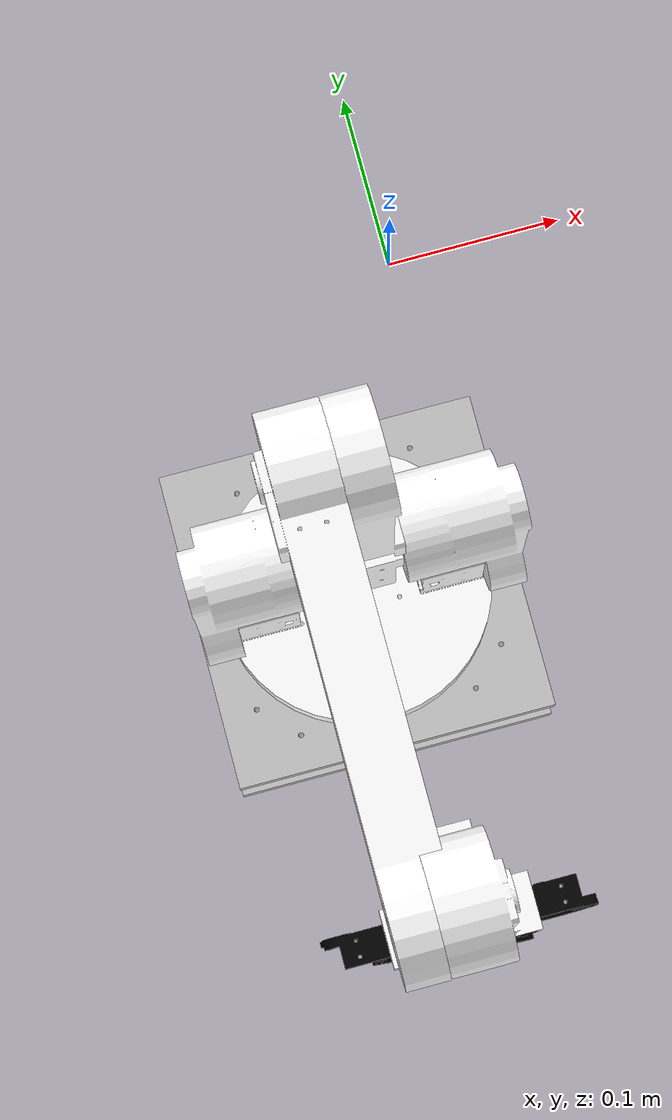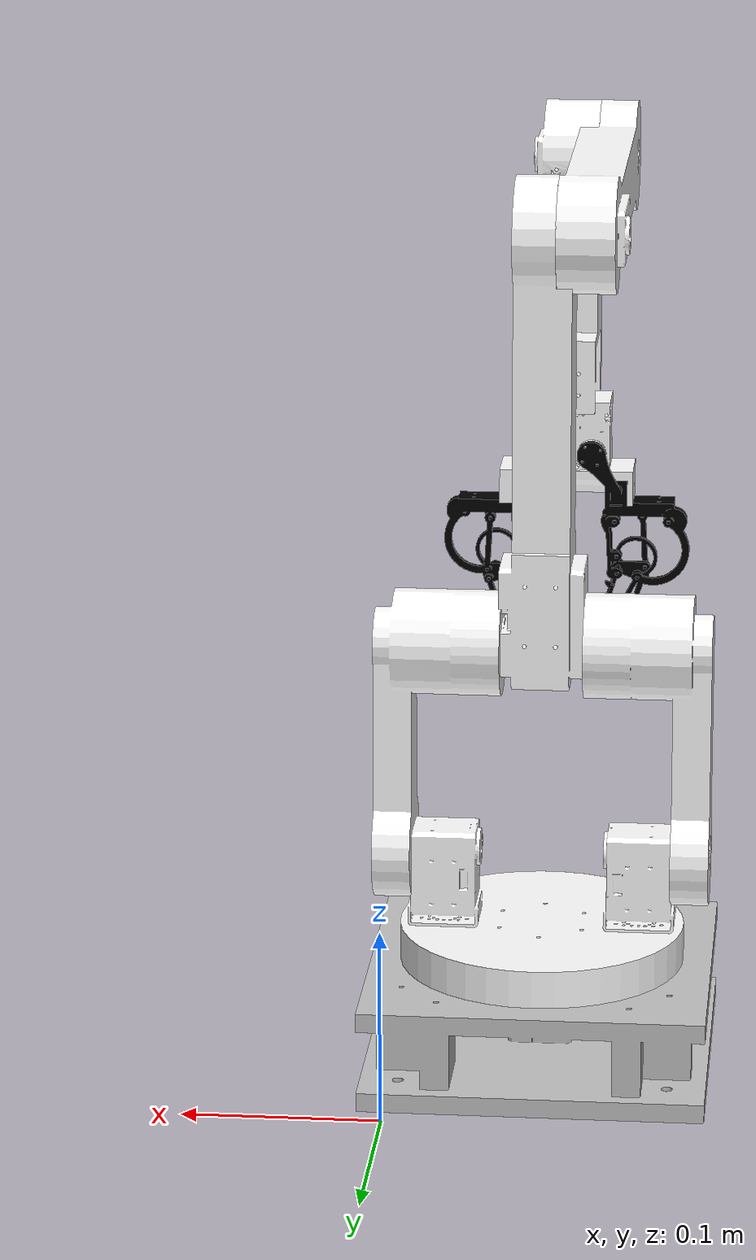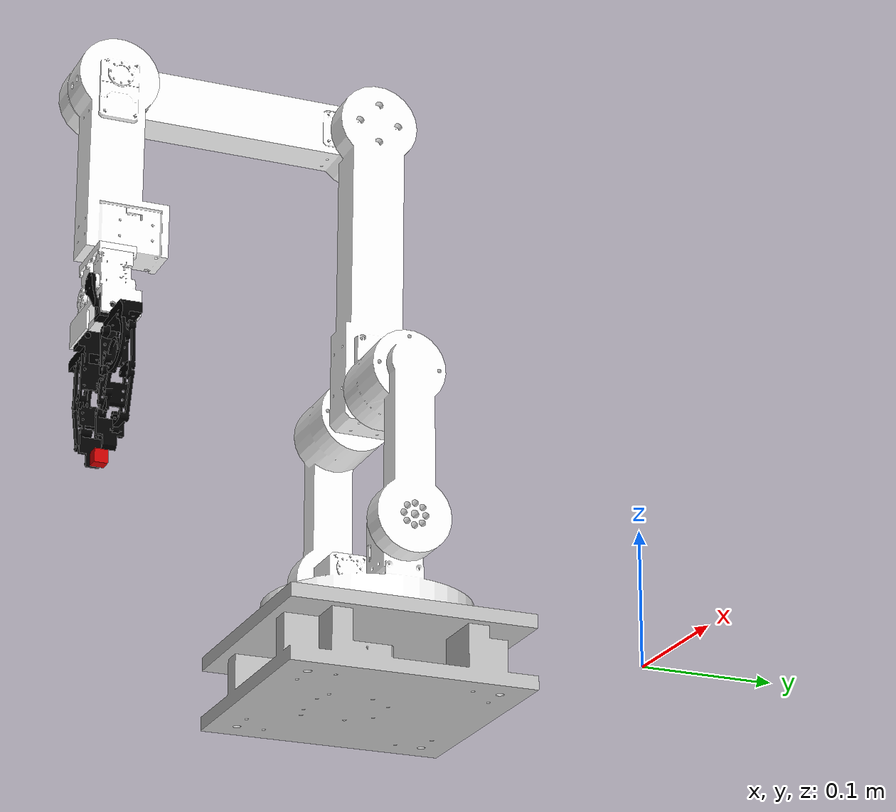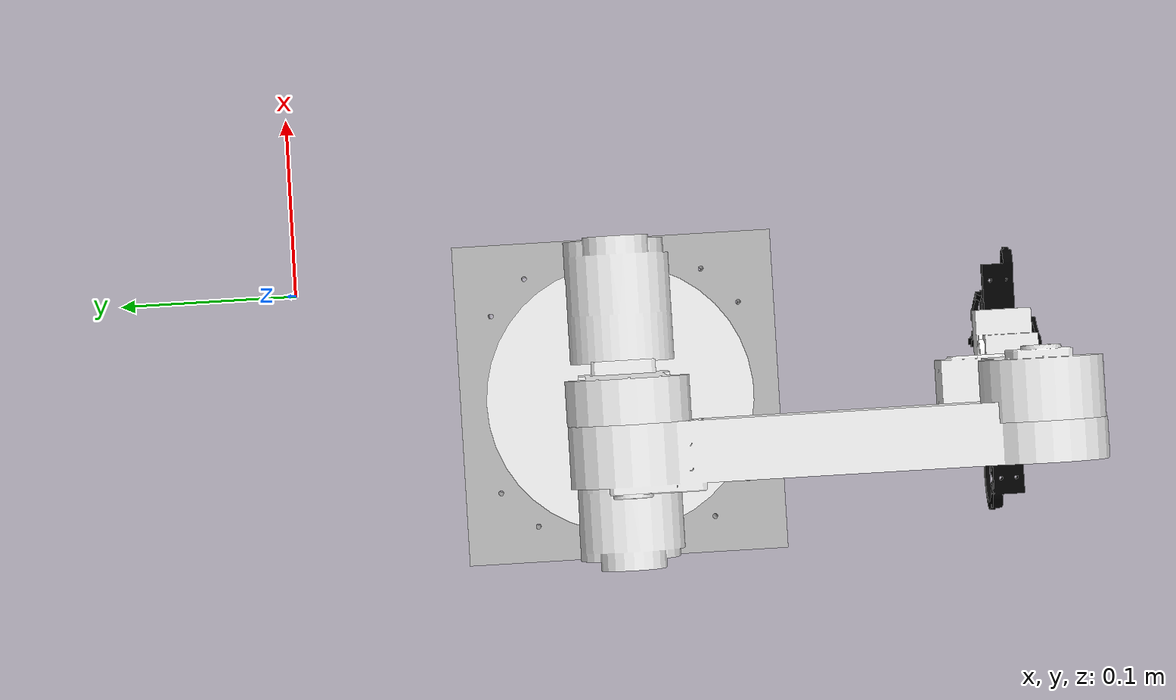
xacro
<?xml version="1.0"?>
<robot xmlns:xacro="http://www.ros.org/wiki/xacro" name="Go_manipulator">
    <xacro:arg name="initial_positions_file" default="initial_positions.yaml" />

    <!-- Import Go_manipulator urdf file -->
    <xacro:include filename="$(find Go_manipulator_description)/urdf/Go_manipulator.urdf" />

    <!-- Import control_xacro -->
    <xacro:include filename="Go_manipulator.ros2_control.xacro" />

    <xacro:Go_manipulator_ros2_control name="FakeSystem" initial_positions_file="$(arg initial_positions_file)"/>

</robot>

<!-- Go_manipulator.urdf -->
<robot name="Go_manipulator">

  <material name="black">
    <color rgba="0.0 0.0 0.0 1.0"/>
  </material>
  <material name="blue">
    <color rgba="0.0 0.0 0.8 1.0"/>
  </material>
  <material name="brown">
    <color rgba="0.8706 0.8118 0.7647 1.0"/>
  </material>
  <material name="dark">
    <color rgba="0.3 0.3 0.3 1.0"/>
  </material>
  <material name="green">
    <color rgba="0.0 0.8 0.0 1.0"/>
  </material>
  <material name="grey">
    <color rgba="0.5 0.5 0.5 1.0"/>
  </material>
  <material name="light_black">
    <color rgba="0.4 0.4 0.4 1.0"/>
  </material>
  <material name="orange">
    <color rgba="1.0 0.4235 0.0392 1.0"/>
  </material>
  <material name="red">
    <color rgba="0.8 0.0 0.0 1.0"/>
  </material>
  <material name="white">
    <color rgba="1.0 1.0 1.0 1.0"/>
  </material>

  <!-- Base Link -->
  <link name="base_link">
    <inertial>
      <origin xyz="-0.0676 -0.0067 0.1811" rpy="0 0 0" />
      <mass value="0.8410" />
      <inertia ixx="0.0026" ixy="2.8e-13" ixz="-4.3e-13" iyy="0.0044" iyz="-5.1e-7" izz="0.0025" />
    </inertial>
    <visual>
      <origin xyz="0 0 0" rpy="0 0 0" />
      <geometry>
        <mesh filename="package://Go_manipulator_description/meshes/base_link.STL" />
      </geometry>
      <material name="">
        <color rgba="0.75 0.75 0.75 1" />
      </material>
    </visual>
    <collision>
      <origin xyz="0 0 0" rpy="0 0 0" />
      <geometry>
        <mesh filename="package://Go_manipulator_description/meshes/base_link.STL" />
      </geometry>
    </collision>
  </link>

  <!-- Link 1 -->
  <link name="link1">
    <inertial>
      <origin xyz="0 0.0180 0.00005" rpy="0 0 0" />
      <mass value="0.4427" />
      <inertia ixx="0.0006" ixy="8.3e-21" ixz="-1.2e-13" iyy="0.0013" iyz="-6.98e-7" izz="0.0009" />
    </inertial>
    <visual>
      <origin xyz="0 0 0" rpy="0 0 0" />
      <geometry>
        <mesh filename="package://Go_manipulator_description/meshes/link1.STL" />
      </geometry>
      <material name="white"/>
    </visual>
    <collision>
      <origin xyz="0 0 0" rpy="0 0 0" />
      <geometry>
        <mesh filename="package://Go_manipulator_description/meshes/link1.STL" />
      </geometry>
    </collision>
  </link>

  <!-- Joint 1 -->
  <joint name="joint1" type="revolute">
    <origin xyz="-0.0676 -0.18 0.0207" rpy="1.5708 0 0" />
    <parent link="base_link" />
    <child link="link1" />
    <axis xyz="0 1 0" />
    <limit lower="-3.14159" upper="3.14159" effort="1" velocity="1.0" />
  </joint>

  <!-- Link 2 -->
  <link name="link2">
    <inertial>
      <origin xyz="0 0.0253 0.0751" rpy="0 0 0" />
      <mass value="0.4222" />
      <inertia ixx="0.0010" ixy="-4.91e-15" ixz="1.65e-15" iyy="0.0027" iyz="-0.00027" izz="0.0020" />
    </inertial>
    <visual>
      <origin xyz="0 0 0" rpy="0 0 0" />
      <geometry>
        <mesh filename="package://Go_manipulator_description/meshes/link2.STL" />
      </geometry>
      <material name="white"/>
    </visual>
    <collision>
      <origin xyz="0 0 0" rpy="0 0 0" />
      <geometry>
        <mesh filename="package://Go_manipulator_description/meshes/link2.STL" />
      </geometry>
    </collision>
  </link>

  <!-- Joint 2 -->
  <joint name="joint2" type="revolute">
    <origin xyz="0 0.0605 0.00025" rpy="-1.2461 0 0" />
    <parent link="link1" />
    <child link="link2" />
    <axis xyz="1 0 0" />
    <limit lower="-3.14159" upper="3.14159" effort="1" velocity="1.0" />

  </joint>

  <!-- Link 3 -->
  <link name="link3">
    <inertial>
      <origin xyz="0.0010 0.0340 0.0946" rpy="0 0 0" />
      <mass value="0.3496" />
      <inertia ixx="0.0022" ixy="-1.15e-5" ixz="-3.21e-5" iyy="0.0019" iyz="-0.00065" izz="0.00032" />
    </inertial>
    <visual>
      <origin xyz="0 0 0" rpy="0 0 0" />
      <geometry>
        <mesh filename="package://Go_manipulator_description/meshes/link3.STL" />
      </geometry>
      <material name="white"/>
    </visual>
    <collision>
      <origin xyz="0 0 0" rpy="0 0 0" />
      <geometry>
        <mesh filename="package://Go_manipulator_description/meshes/link3.STL" />
      </geometry>
    </collision>
  </link>

  <!-- Joint 3 -->
  <joint name="joint3" type="revolute">
    <origin xyz="0 0.0360 0.1070" rpy="0.0142 0 0" />
    <parent link="link2" />
    <child link="link3" />
    <axis xyz="1 0 0" />
    <limit lower="-3.14159" upper="3.14159" effort="1" velocity="1.0" />

  </joint>

  <!-- Link 4 -->
  <link name="link4">
    <inertial>
      <origin xyz="-0.0225 0.0259 0.0850" rpy="0 0 0" />
      <mass value="0.3143" />
      <inertia ixx="0.0018" ixy="7.0e-6" ixz="2.29e-5" iyy="0.0016" iyz="-0.00046" izz="0.00022" />
    </inertial>
    <visual>
      <origin xyz="0 0 0" rpy="0 0 0" />
      <geometry>
        <mesh filename="package://Go_manipulator_description/meshes/link4.STL" />
      </geometry>
      <material name="white"/>
    </visual>
    <collision>
      <origin xyz="0 0 0" rpy="0 0 0" />
      <geometry>
        <mesh filename="package://Go_manipulator_description/meshes/link4.STL" />
      </geometry>
    </collision>
  </link>

  <!-- Joint 4 -->
  <joint name="joint4" type="revolute">
    <origin xyz="0 0.0738 0.2053" rpy="1.5283 0 0" />
    <parent link="link3" />
    <child link="link4" />
    <axis xyz="1 0 0" />
    <limit lower="-3.14159" upper="3.14159" effort="1" velocity="1.0" />

  </joint>

  <!-- Link 5 -->
  <link name="link5">
    <inertial>
      <origin xyz="-0.0007 -0.0543 -0.0032" rpy="0 0 0" />
      <mass value="0.2388" />
      <inertia ixx="0.0006" ixy="2.93e-6" ixz="5.84e-7" iyy="7.49e-5" iyz="-4.25e-5" izz="0.0006" />
    </inertial>
    <visual>
      <origin xyz="0 0 0" rpy="0 0 0" />
      <geometry>
        <mesh filename="package://Go_manipulator_description/meshes/link5.STL" />
      </geometry>
      <material name="white"/>
    </visual>
    <collision>
      <origin xyz="0 0 0" rpy="0 0 0" />
      <geometry>
        <mesh filename="package://Go_manipulator_description/meshes/link5.STL" />
      </geometry>
    </collision>
  </link>

  <!-- Joint 5 -->
  <joint name="joint5" type="revolute">
    <origin xyz="0 0.0583 0.1913" rpy="-0.2964 0 0" />
    <parent link="link4" />
    <child link="link5" />
    <axis xyz="1 0 0" />
    <limit lower="-3.14159" upper="3.14159" effort="1" velocity="1.0" />

  </joint>

  <!-- Gripper Base -->
  <link name="gripper_base">
    <inertial>
      <origin xyz="0.0001 -0.0283 0" rpy="0 0 0" />
      <mass value="0.0568" />
      <inertia ixx="3.21e-5" ixy="8.06e-8" ixz="-3.23e-7" iyy="2.21e-5" iyz="-6.81e-18" izz="1.67e-5" />
    </inertial>
    <visual>
      <origin xyz="0 0 0" rpy="0 0 0" />
      <geometry>
        <mesh filename="package://Go_manipulator_description/meshes/gripper_base.STL" />
      </geometry>
      <material name="white"/>
    </visual>
    <collision>
      <origin xyz="0 0 0" rpy="0 0 0" />
      <geometry>
        <mesh filename="package://Go_manipulator_description/meshes/gripper_base.STL" />
      </geometry>
    </collision>
  </link>

  <!-- Joint 6 -->
  <joint name="joint6" type="revolute">
    <origin xyz="0.0006 -0.1363 -0.0005" rpy="0 1.5708 0" />
    <parent link="link5" />
    <child link="gripper_base" />
    <axis xyz="0 1 0" />
    <limit lower="-3.14159" upper="3.14159" effort="1" velocity="1.0" />
  </joint>

  <!-- Gripper Finger 1 -->
  <link name="gripper_finger1">
    <inertial>
      <origin xyz="0.0518 -0.0832 -0.0127" rpy="0 0 0" />
      <mass value="0.0356" />
      <inertia ixx="4.53e-5" ixy="-4.95e-7" ixz="-2.13e-7" iyy="2.41e-5" iyz="-8.24e-6" izz="2.56e-5" />
    </inertial>
    <visual>
      <origin xyz="0 0 0" rpy="0 0 0" />
      <geometry>
        <mesh filename="package://Go_manipulator_description/meshes/gripper_finger1.STL" />
      </geometry>
      <material name="black"/>
    </visual>
    <collision>
      <origin xyz="0 0 0" rpy="0 0 0" />
      <geometry>
        <mesh filename="package://Go_manipulator_description/meshes/gripper_finger1.STL" />
      </geometry>
    </collision>
  </link>

  <!-- Joint 7 -->
  <joint name="joint7" type="revolute">
    <origin xyz="-0.0509 0.0241 -0.0024" rpy="0 0 0" />
    <parent link="gripper_base" />
    <child link="gripper_finger1" />
    <axis xyz="1 0 0" />
    <limit lower="-0.2" upper="0.2" effort="100" velocity="0.1" />
  </joint>

  <!-- Gripper Finger 2 -->
  <link name="gripper_finger2">
    <inertial>
      <origin xyz="0.0518 0.0832 0.0141" rpy="0 0 0" />
      <mass value="0.0356" />
      <inertia ixx="4.53e-5" ixy="4.98e-7" ixz="2.22e-7" iyy="2.41e-5" iyz="-8.25e-6" izz="2.56e-5" />
    </inertial>
    <visual>
      <origin xyz="0 0 0" rpy="0 0 0" />
      <geometry>
        <mesh filename="package://Go_manipulator_description/meshes/gripper_finger2.STL" />
      </geometry>
      <material name="black"/>
    </visual>
    <collision>
      <origin xyz="0 0 0" rpy="0 0 0" />
      <geometry>
        <mesh filename="package://Go_manipulator_description/meshes/gripper_finger2.STL" />
      </geometry>
    </collision>
  </link>

  <!-- Joint 8 -->
  <joint name="joint8" type="revolute">
    <origin xyz="0.0509 0.0241 0.0019" rpy="0 0 3.1416" />
    <parent link="gripper_base" />
    <child link="gripper_finger2" />
    <axis xyz="1 0 0" />
    <mimic joint="joint7"/>
    <limit lower="-0.2" upper="0.2" effort="100" velocity="0.1" />
  </joint>

  <joint name="end_effector_joint" type="fixed">
    <parent link="link5"/>
    <child link="end_effector_link"/>
    <origin xyz="0.0 -0.288 0.0 " rpy="0 0 0"/>
  </joint>

  <link name="end_effector_link">
    <visual>
      <origin rpy="0 0 0" xyz="0 0 0"/>
      <geometry>
        <box size="0.01 0.01 0.01"/>
      </geometry>
      <material name="red"/>
    </visual>
  </link>

</robot>
